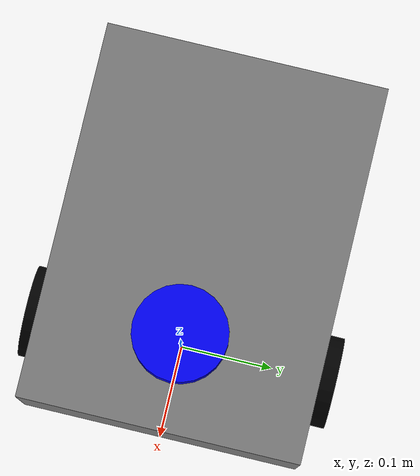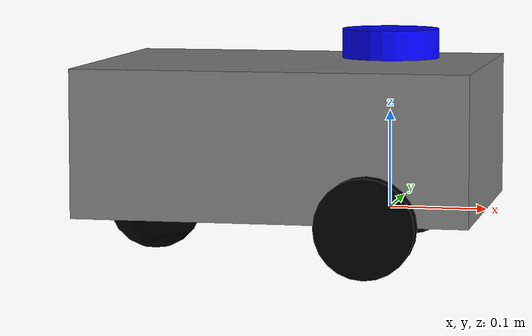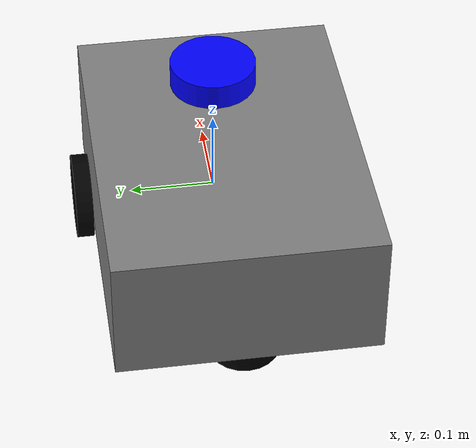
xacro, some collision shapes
<?xml version="1.0"?>
<robot xmlns:xacro = "http://www.ros.org/wiki/xacro" >

    <xacro:include filename="inertial_macros.xacro"/>

    <!-- BASE LINK -->

    <link name="base_link"></link>

    <!-- CHASSIS LINK -->

    <joint name="chassis_joint" type ="fixed">
        <parent link="base_link"/>
        <child link="chassis"/>
        <origin xyz="-0.3 0.0 0.0"/>
    </joint>

    <link name="chassis">
        <visual>
            <origin xyz="0.2 0 0.075"/>
            <geometry>
                <box size="0.4 0.3 0.15"/>
            </geometry>
            <material name="gray">
                <color rgba="0.5 0.5 0.5 1"/>
            </material>
        </visual>
        <collision>
            <origin xyz="0.2 0 0.075"/>
            <geometry>
                <box size="0.4 0.3 0.15"/>
            </geometry>
        </collision>
        <xacro:inertial_box mass="2.9" x = "0.4" y="0.3" z="0.15">
            <origin xyz="0.2 0 0.075" rpy="0 0 0"/>
        </xacro:inertial_box>
    </link>

    <!-- LEFT WHEEL LINK -->

    <joint name="left_wheel_joint" type="continuous">
        <parent link="base_link"/>
        <child link="left_wheel"/>
        <origin xyz="0 0.16 0" rpy="-${pi/2} 0 0"/>
        <axis xyz="0 0 1"/>
    </joint>

    <link name="left_wheel">
        <visual>
            <geometry>
                <cylinder radius="0.05" length="0.02"/>
            </geometry>
            <material name="black">
                <color rgba="0 0 0 1"/>
            </material>
        </visual>
        <collision>
            <geometry>
                <cylinder radius="0.05" length="0.02"/>
            </geometry>
        </collision>
        <xacro:inertial_cylinder mass="0.1" length="0.02" radius="0.05">
            <origin xyz="0 0 0" rpy="0 0 0"/>
        </xacro:inertial_cylinder>

    </link>

    <!-- RIGHT WHEEL LINK -->

    <joint name="right_wheel_joint" type="continuous">
        <parent link="base_link"/>
        <child link="right_wheel"/>
        <origin xyz="0 -0.16 0" rpy="${pi/2} 0 0"/>
        <axis xyz="0 0 -1"/>
    </joint>

    <link name="right_wheel">
        <visual>
            <geometry>
                <cylinder radius="0.05" length="0.02"/>
            </geometry>
            <material name="black">
                <color rgba="0 0 0 1"/>
            </material>
        </visual>
        <collision>
            <geometry>
                <cylinder radius="0.05" length="0.02"/>
            </geometry>
        </collision>
        <xacro:inertial_cylinder mass="0.1" length="0.02" radius="0.05">
            <origin xyz="0 0 0" rpy="0 0 0"/>
        </xacro:inertial_cylinder>
    </link>

    <!-- CASTER WHEEL LINK -->

    <joint name="caster_wheel_joint" type="fixed">
        <parent link="chassis"/>
        <child link="caster_wheel"/>
        <origin xyz="0.05 0 0"/>
    </joint>

    <link name="caster_wheel">
        <visual>
            <geometry>
                <sphere radius="0.05"/>
            </geometry>
            <material name="black">
                <color rgba="0 0 0 1"/>
            </material>
        </visual>
        <collision>
            <geometry>
                <sphere radius="0.05"/>
            </geometry>
        </collision>
        <xacro:inertial_sphere mass="0.1" radius="0.05">
            <origin xyz="0 0 0" rpy="0 0 0"/>
        </xacro:inertial_sphere>
    </link>

        <!-- LiDAR -->
    <joint name="lidar_joint" type="fixed">
        <parent link="base_link"/>
        <child link="lidar_link"/>
        <origin xyz="0 0 0.17" rpy="0 0 0"/>
    </joint>

    <link name="lidar_link">
        <visual>
            <origin xyz="0 0 0" rpy="0 0 0"/>
            <geometry>
            <mesh filename="package://robot_description/meshes/YdlidarX2.stl" scale="0.001 0.001 0.001"/>
            </geometry>
            <material name="blue">
                <color rgba="0 0 1 1"/>
            </material>
        </visual>
        <collision>
            <origin xyz="0 0 0" rpy="0 0 0"/>
            <geometry>
                <cylinder radius="0.05" length="0.03"/>
            </geometry>
        </collision>
        <xacro:inertial_cylinder mass="0.2" radius="0.05" length="0.03">
            <origin xyz="0 0 0" rpy="0 0 0"/>
        </xacro:inertial_cylinder>
    </link>

</robot>
